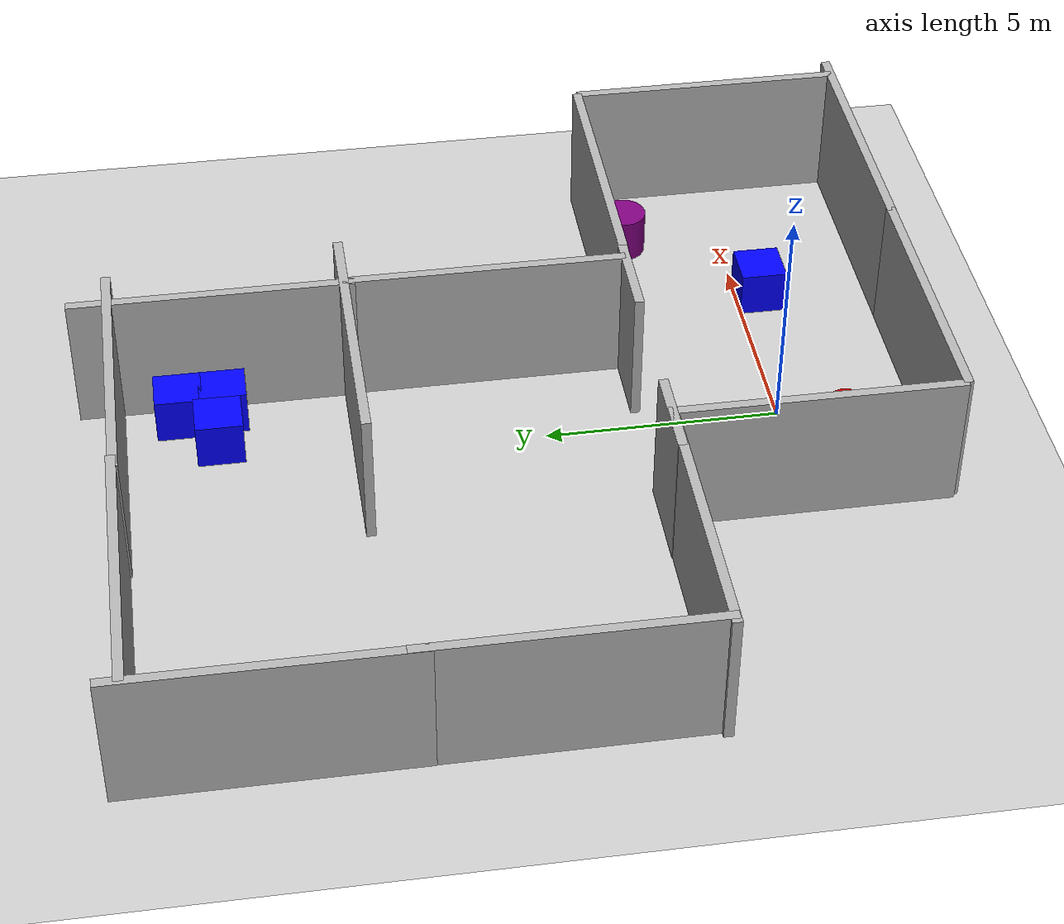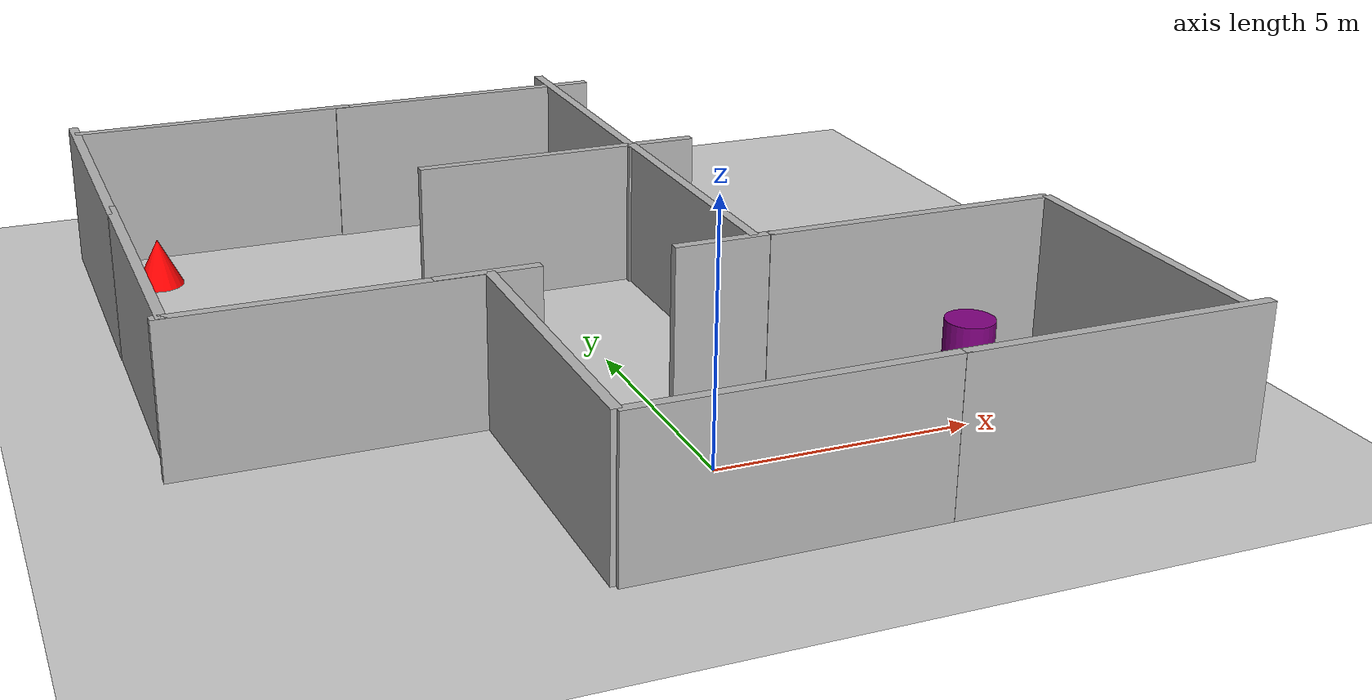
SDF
<sdf version='1.10'>
  <world name='empty'>
    <physics name='1ms' type='ignored'>
      <max_step_size>0.001</max_step_size>
      <real_time_factor>1</real_time_factor>
      <real_time_update_rate>1000</real_time_update_rate>
    </physics>
    <plugin name='gz::sim::systems::Physics' filename='gz-sim-physics-system'/>
    <plugin name='gz::sim::systems::UserCommands' filename='gz-sim-user-commands-system'/>
    <plugin name='gz::sim::systems::SceneBroadcaster' filename='gz-sim-scene-broadcaster-system'/>
    <plugin name='gz::sim::systems::Contact' filename='gz-sim-contact-system'/>
    <gravity>0 0 -9.8000000000000007</gravity>
    <magnetic_field>5.5644999999999998e-06 2.2875799999999999e-05 -4.2388400000000002e-05</magnetic_field>
    <atmosphere type='adiabatic'/>
    <scene>
      <ambient>0.400000006 0.400000006 0.400000006 1</ambient>
      <background>0.699999988 0.699999988 0.699999988 1</background>
      <shadows>true</shadows>
    </scene>
    <model name='ground_plane'>
      <static>true</static>
      <link name='link'>
        <collision name='collision'>
          <geometry>
            <plane>
              <normal>0 0 1</normal>
              <size>100 100</size>
            </plane>
          </geometry>
          <surface>
            <friction>
              <ode/>
            </friction>
            <bounce/>
            <contact/>
          </surface>
        </collision>
        <visual name='visual'>
          <geometry>
            <plane>
              <normal>0 0 1</normal>
              <size>100 100</size>
            </plane>
          </geometry>
          <material>
            <ambient>0.800000012 0.800000012 0.800000012 1</ambient>
            <diffuse>0.800000012 0.800000012 0.800000012 1</diffuse>
            <specular>0.800000012 0.800000012 0.800000012 1</specular>
          </material>
        </visual>
        <pose>0 0 0 0 0 0</pose>
        <inertial>
          <pose>0 0 0 0 0 0</pose>
          <mass>1</mass>
          <inertia>
            <ixx>1</ixx>
            <ixy>0</ixy>
            <ixz>0</ixz>
            <iyy>1</iyy>
            <iyz>0</iyz>
            <izz>1</izz>
          </inertia>
        </inertial>
        <enable_wind>false</enable_wind>
      </link>
      <pose>0 0 0 0 0 0</pose>
      <self_collide>false</self_collide>
    </model>
    <model name='box'>
      <pose>4.0339798927307129 -0.47071200609207153 0.5 1.0047999786145134e-21 -2.4640900634903831e-21 -3.9210799561843731e-22</pose>
      <link name='box_link'>
        <inertial>
          <inertia>
            <ixx>0.16666</ixx>
            <ixy>0</ixy>
            <ixz>0</ixz>
            <iyy>0.16666</iyy>
            <iyz>0</iyz>
            <izz>0.16666</izz>
          </inertia>
          <mass>1</mass>
          <pose>0 0 0 0 0 0</pose>
        </inertial>
        <collision name='box_collision'>
          <geometry>
            <box>
              <size>1 1 1</size>
            </box>
          </geometry>
          <surface>
            <friction>
              <ode/>
            </friction>
            <bounce/>
            <contact/>
          </surface>
        </collision>
        <visual name='box_visual'>
          <geometry>
            <box>
              <size>1 1 1</size>
            </box>
          </geometry>
          <material>
            <ambient>0 0 1 1</ambient>
            <diffuse>0 0 1 1</diffuse>
            <specular>1 1 1 1</specular>
          </material>
        </visual>
        <pose>0 0 0 0 0 0</pose>
        <enable_wind>false</enable_wind>
      </link>
      <static>false</static>
      <self_collide>false</self_collide>
    </model>
    <model name='sphere'>
      <pose>-0.70735299587249756 -1.2732700109481812 0.5 0 0 0</pose>
      <link name='sphere_link'>
        <inertial>
          <inertia>
            <ixx>0.10000000000000001</ixx>
            <ixy>0</ixy>
            <ixz>0</ixz>
            <iyy>0.10000000000000001</iyy>
            <iyz>0</iyz>
            <izz>0.10000000000000001</izz>
          </inertia>
          <mass>1</mass>
          <pose>0 0 0 0 0 0</pose>
        </inertial>
        <collision name='sphere_collision'>
          <geometry>
            <sphere>
              <radius>0.5</radius>
            </sphere>
          </geometry>
          <surface>
            <friction>
              <ode/>
            </friction>
            <bounce/>
            <contact/>
          </surface>
        </collision>
        <visual name='sphere_visual'>
          <geometry>
            <sphere>
              <radius>0.5</radius>
            </sphere>
          </geometry>
          <material>
            <ambient>1 0 0 1</ambient>
            <diffuse>1 0 0 1</diffuse>
            <specular>1 1 1 1</specular>
          </material>
        </visual>
        <pose>0 0 0 0 0 0</pose>
        <enable_wind>false</enable_wind>
      </link>
      <static>false</static>
      <self_collide>false</self_collide>
    </model>
    <model name='cylinder'>
      <pose>-7.2580199241638184 5.6290874481201172 0.49999898672103882 -1.7794600142924832e-19 6.2534399359671988e-19 -6.0281497998140797e-21</pose>
      <link name='cylinder_link'>
        <inertial>
          <inertia>
            <ixx>0.14580000000000001</ixx>
            <ixy>0</ixy>
            <ixz>0</ixz>
            <iyy>0.14580000000000001</iyy>
            <iyz>0</iyz>
            <izz>0.125</izz>
          </inertia>
          <mass>1</mass>
          <pose>0 0 0 0 0 0</pose>
        </inertial>
        <collision name='cylinder_collision'>
          <geometry>
            <cylinder>
              <radius>0.5</radius>
              <length>1</length>
            </cylinder>
          </geometry>
          <surface>
            <friction>
              <ode/>
            </friction>
            <bounce/>
            <contact/>
          </surface>
        </collision>
        <visual name='cylinder_visual'>
          <geometry>
            <cylinder>
              <radius>0.5</radius>
              <length>1</length>
            </cylinder>
          </geometry>
          <material>
            <ambient>0 1 0 1</ambient>
            <diffuse>0 1 0 1</diffuse>
            <specular>1 1 1 1</specular>
          </material>
        </visual>
        <pose>0 0 0 0 0 0</pose>
        <enable_wind>false</enable_wind>
      </link>
      <static>false</static>
      <self_collide>false</self_collide>
    </model>
    <model name='cylinder_0'>
      <pose>6.3694213085697573 2.2102483620514861 0.49999942638036005 3.0857583778038498e-19 3.7139836222223398e-19 -6.141993237134564e-21</pose>
      <link name='cylinder_link'>
        <inertial>
          <inertia>
            <ixx>0.14580000000000001</ixx>
            <ixy>0</ixy>
            <ixz>0</ixz>
            <iyy>0.14580000000000001</iyy>
            <iyz>0</iyz>
            <izz>0.125</izz>
          </inertia>
          <mass>1</mass>
          <pose>0 0 0 0 0 0</pose>
        </inertial>
        <collision name='cylinder_collision'>
          <geometry>
            <cylinder>
              <radius>0.5</radius>
              <length>1</length>
            </cylinder>
          </geometry>
          <surface>
            <friction>
              <ode/>
            </friction>
            <bounce/>
            <contact/>
          </surface>
        </collision>
        <visual name='cylinder_visual'>
          <geometry>
            <cylinder>
              <radius>0.5</radius>
              <length>1</length>
            </cylinder>
          </geometry>
          <material>
            <ambient>0.5 0 0.5 1</ambient>
            <diffuse>0.5 0 0.5 1</diffuse>
            <specular>1 1 1 1</specular>
          </material>
        </visual>
        <pose>0 0 0 0 0 0</pose>
        <enable_wind>false</enable_wind>
      </link>
      <static>false</static>
      <self_collide>false</self_collide>
    </model>
    <model name='room1_west_wall'>
      <static>true</static>
      <link name='wall_link'>
        <collision name='wall_collision'>
          <geometry>
            <box>
              <size>0.20000000000000001 6 3</size>
            </box>
          </geometry>
          <surface>
            <friction>
              <ode/>
            </friction>
            <bounce/>
            <contact/>
          </surface>
        </collision>
        <visual name='wall_visual'>
          <geometry>
            <box>
              <size>0.20000000000000001 6 3</size>
            </box>
          </geometry>
          <material>
            <ambient>0.5 0.5 0.5 1</ambient>
            <diffuse>0.699999988 0.699999988 0.699999988 1</diffuse>
            <specular>1 1 1 1</specular>
          </material>
        </visual>
        <pose>0 0 0 0 0 0</pose>
        <inertial>
          <pose>0 0 0 0 0 0</pose>
          <mass>10</mass>
          <inertia>
            <ixx>1</ixx>
            <ixy>0</ixy>
            <ixz>0</ixz>
            <iyy>1</iyy>
            <iyz>0</iyz>
            <izz>1</izz>
          </inertia>
        </inertial>
        <enable_wind>false</enable_wind>
      </link>
      <pose>-3 0 1.5 0 0 0</pose>
      <self_collide>false</self_collide>
    </model>
    <model name='room1_south_wall'>
      <static>true</static>
      <link name='wall_link'>
        <collision name='wall_collision'>
          <geometry>
            <box>
              <size>6 0.20000000000000001 3</size>
            </box>
          </geometry>
          <surface>
            <friction>
              <ode/>
            </friction>
            <bounce/>
            <contact/>
          </surface>
        </collision>
        <visual name='wall_visual'>
          <geometry>
            <box>
              <size>6 0.20000000000000001 3</size>
            </box>
          </geometry>
          <material>
            <ambient>0.5 0.5 0.5 1</ambient>
            <diffuse>0.699999988 0.699999988 0.699999988 1</diffuse>
            <specular>1 1 1 1</specular>
          </material>
        </visual>
        <pose>0 0 0 0 0 0</pose>
        <inertial>
          <pose>0 0 0 0 0 0</pose>
          <mass>10</mass>
          <inertia>
            <ixx>1</ixx>
            <ixy>0</ixy>
            <ixz>0</ixz>
            <iyy>1</iyy>
            <iyz>0</iyz>
            <izz>1</izz>
          </inertia>
        </inertial>
        <enable_wind>false</enable_wind>
      </link>
      <pose>0 -3 1.5 0 0 0</pose>
      <self_collide>false</self_collide>
    </model>
    <model name='room1_north_wall_left'>
      <static>true</static>
      <link name='wall_link'>
        <collision name='wall_collision'>
          <geometry>
            <box>
              <size>2 0.20000000000000001 3</size>
            </box>
          </geometry>
          <surface>
            <friction>
              <ode/>
            </friction>
            <bounce/>
            <contact/>
          </surface>
        </collision>
        <visual name='wall_visual'>
          <geometry>
            <box>
              <size>2 0.20000000000000001 3</size>
            </box>
          </geometry>
          <material>
            <ambient>0.5 0.5 0.5 1</ambient>
            <diffuse>0.699999988 0.699999988 0.699999988 1</diffuse>
            <specular>1 1 1 1</specular>
          </material>
        </visual>
        <pose>0 0 0 0 0 0</pose>
        <inertial>
          <pose>0 0 0 0 0 0</pose>
          <mass>10</mass>
          <inertia>
            <ixx>1</ixx>
            <ixy>0</ixy>
            <ixz>0</ixz>
            <iyy>1</iyy>
            <iyz>0</iyz>
            <izz>1</izz>
          </inertia>
        </inertial>
        <enable_wind>false</enable_wind>
      </link>
      <pose>-3.032249927520752 3 1.5 0 0 0</pose>
      <self_collide>false</self_collide>
    </model>
    <model name='room1_north_wall_right'>
      <static>true</static>
      <link name='wall_link'>
        <collision name='wall_collision'>
          <geometry>
            <box>
              <size>2 0.20000000000000001 3</size>
            </box>
          </geometry>
          <surface>
            <friction>
              <ode/>
            </friction>
            <bounce/>
            <contact/>
          </surface>
        </collision>
        <visual name='wall_visual'>
          <geometry>
            <box>
              <size>2 0.20000000000000001 3</size>
            </box>
          </geometry>
          <material>
            <ambient>0.5 0.5 0.5 1</ambient>
            <diffuse>0.699999988 0.699999988 0.699999988 1</diffuse>
            <specular>1 1 1 1</specular>
          </material>
        </visual>
        <pose>0 0 0 0 0 0</pose>
        <inertial>
          <pose>0 0 0 0 0 0</pose>
          <mass>10</mass>
          <inertia>
            <ixx>1</ixx>
            <ixy>0</ixy>
            <ixz>0</ixz>
            <iyy>1</iyy>
            <iyz>0</iyz>
            <izz>1</izz>
          </inertia>
        </inertial>
        <enable_wind>false</enable_wind>
      </link>
      <pose>1.5 3 1.5 0 0 0</pose>
      <self_collide>false</self_collide>
    </model>
    <model name='room1_south_wall_1'>
      <static>true</static>
      <link name='wall_link'>
        <collision name='wall_collision'>
          <geometry>
            <box>
              <size>6 0.20000000000000001 3</size>
            </box>
          </geometry>
          <surface>
            <friction>
              <ode/>
            </friction>
            <bounce/>
            <contact/>
          </surface>
        </collision>
        <visual name='wall_visual'>
          <geometry>
            <box>
              <size>6 0.20000000000000001 3</size>
            </box>
          </geometry>
          <material>
            <ambient>0.5 0.5 0.5 1</ambient>
            <diffuse>0.699999988 0.699999988 0.699999988 1</diffuse>
            <specular>1 1 1 1</specular>
          </material>
        </visual>
        <pose>0 0 0 0 0 0</pose>
        <inertial>
          <pose>0 0 0 0 0 0</pose>
          <mass>10</mass>
          <inertia>
            <ixx>1</ixx>
            <ixy>0</ixy>
            <ixz>0</ixz>
            <iyy>1</iyy>
            <iyz>0</iyz>
            <izz>1</izz>
          </inertia>
        </inertial>
        <enable_wind>false</enable_wind>
      </link>
      <pose>5.8957955256528241 -3.0041600792171779 1.5 0 0 0</pose>
      <self_collide>false</self_collide>
    </model>
    <model name='room1_west_wall_1'>
      <static>true</static>
      <link name='wall_link'>
        <collision name='wall_collision'>
          <geometry>
            <box>
              <size>0.20000000000000001 6 3</size>
            </box>
          </geometry>
          <surface>
            <friction>
              <ode/>
            </friction>
            <bounce/>
            <contact/>
          </surface>
        </collision>
        <visual name='wall_visual'>
          <geometry>
            <box>
              <size>0.20000000000000001 6 3</size>
            </box>
          </geometry>
          <material>
            <ambient>0.5 0.5 0.5 1</ambient>
            <diffuse>0.699999988 0.699999988 0.699999988 1</diffuse>
            <specular>1 1 1 1</specular>
          </material>
        </visual>
        <pose>0 0 0 0 0 0</pose>
        <inertial>
          <pose>0 0 0 0 0 0</pose>
          <mass>10</mass>
          <inertia>
            <ixx>1</ixx>
            <ixy>0</ixy>
            <ixz>0</ixz>
            <iyy>1</iyy>
            <iyz>0</iyz>
            <izz>1</izz>
          </inertia>
        </inertial>
        <enable_wind>false</enable_wind>
      </link>
      <pose>8.3822908434480823 -0.024907070862098202 1.5 0 0 0</pose>
      <self_collide>false</self_collide>
    </model>
    <model name='room1_south_wall_1_1'>
      <static>true</static>
      <link name='wall_link'>
        <collision name='wall_collision'>
          <geometry>
            <box>
              <size>6 0.20000000000000001 3</size>
            </box>
          </geometry>
          <surface>
            <friction>
              <ode/>
            </friction>
            <bounce/>
            <contact/>
          </surface>
        </collision>
        <visual name='wall_visual'>
          <geometry>
            <box>
              <size>6 0.20000000000000001 3</size>
            </box>
          </geometry>
          <material>
            <ambient>0.5 0.5 0.5 1</ambient>
            <diffuse>0.699999988 0.699999988 0.699999988 1</diffuse>
            <specular>1 1 1 1</specular>
          </material>
        </visual>
        <pose>0 0 0 0 0 0</pose>
        <inertial>
          <pose>0 0 0 0 0 0</pose>
          <mass>10</mass>
          <inertia>
            <ixx>1</ixx>
            <ixy>0</ixy>
            <ixz>0</ixz>
            <iyy>1</iyy>
            <iyz>0</iyz>
            <izz>1</izz>
          </inertia>
        </inertial>
        <enable_wind>false</enable_wind>
      </link>
      <pose>5.3981870249106585 2.986324652797911 1.5 0 0 0</pose>
      <self_collide>false</self_collide>
    </model>
    <model name='room1_south_wall_1_1_1'>
      <static>true</static>
      <link name='wall_link'>
        <collision name='wall_collision'>
          <geometry>
            <box>
              <size>6 0.20000000000000001 3</size>
            </box>
          </geometry>
          <surface>
            <friction>
              <ode/>
            </friction>
            <bounce/>
            <contact/>
          </surface>
        </collision>
        <visual name='wall_visual'>
          <geometry>
            <box>
              <size>6 0.20000000000000001 3</size>
            </box>
          </geometry>
          <material>
            <ambient>0.5 0.5 0.5 1</ambient>
            <diffuse>0.699999988 0.699999988 0.699999988 1</diffuse>
            <specular>1 1 1 1</specular>
          </material>
        </visual>
        <pose>0 0 0 0 0 0</pose>
        <inertial>
          <pose>0 0 0 0 0 0</pose>
          <mass>10</mass>
          <inertia>
            <ixx>1</ixx>
            <ixy>0</ixy>
            <ixz>0</ixz>
            <iyy>1</iyy>
            <iyz>0</iyz>
            <izz>1</izz>
          </inertia>
        </inertial>
        <enable_wind>false</enable_wind>
      </link>
      <pose>-5.8938198089599609 2.9850499629974365 1.5 0 0 0</pose>
      <self_collide>false</self_collide>
    </model>
    <model name='room1_west_wall_2'>
      <static>true</static>
      <link name='wall_link'>
        <collision name='wall_collision'>
          <geometry>
            <box>
              <size>0.20000000000000001 6 3</size>
            </box>
          </geometry>
          <surface>
            <friction>
              <ode/>
            </friction>
            <bounce/>
            <contact/>
          </surface>
        </collision>
        <visual name='wall_visual'>
          <geometry>
            <box>
              <size>0.20000000000000001 6 3</size>
            </box>
          </geometry>
          <material>
            <ambient>0.5 0.5 0.5 1</ambient>
            <diffuse>0.699999988 0.699999988 0.699999988 1</diffuse>
            <specular>1 1 1 1</specular>
          </material>
        </visual>
        <pose>0 0 0 0 0 0</pose>
        <inertial>
          <pose>0 0 0 0 0 0</pose>
          <mass>10</mass>
          <inertia>
            <ixx>1</ixx>
            <ixy>0</ixy>
            <ixz>0</ixz>
            <iyy>1</iyy>
            <iyz>0</iyz>
            <izz>1</izz>
          </inertia>
        </inertial>
        <enable_wind>false</enable_wind>
      </link>
      <pose>-8.6940197659931151 5.8971262683287646 1.5 0 0 0</pose>
      <self_collide>false</self_collide>
    </model>
    <model name='room1_west_wall_3'>
      <static>true</static>
      <link name='wall_link'>
        <collision name='wall_collision'>
          <geometry>
            <box>
              <size>0.20000000000000001 6 3</size>
            </box>
          </geometry>
          <surface>
            <friction>
              <ode/>
            </friction>
            <bounce/>
            <contact/>
          </surface>
        </collision>
        <visual name='wall_visual'>
          <geometry>
            <box>
              <size>0.20000000000000001 6 3</size>
            </box>
          </geometry>
          <material>
            <ambient>0.5 0.5 0.5 1</ambient>
            <diffuse>0.699999988 0.699999988 0.699999988 1</diffuse>
            <specular>1 1 1 1</specular>
          </material>
        </visual>
        <pose>0 0 0 0 0 0</pose>
        <inertial>
          <pose>0 0 0 0 0 0</pose>
          <mass>10</mass>
          <inertia>
            <ixx>1</ixx>
            <ixy>0</ixy>
            <ixz>0</ixz>
            <iyy>1</iyy>
            <iyz>0</iyz>
            <izz>1</izz>
          </inertia>
        </inertial>
        <enable_wind>false</enable_wind>
      </link>
      <pose>-8.7047430409375934 11.423654172731405 1.5 0 0 0</pose>
      <self_collide>false</self_collide>
    </model>
    <model name='room1_west_wall_4'>
      <static>true</static>
      <link name='wall_link'>
        <collision name='wall_collision'>
          <geometry>
            <box>
              <size>0.20000000000000001 6 3</size>
            </box>
          </geometry>
          <surface>
            <friction>
              <ode/>
            </friction>
            <bounce/>
            <contact/>
          </surface>
        </collision>
        <visual name='wall_visual'>
          <geometry>
            <box>
              <size>0.20000000000000001 6 3</size>
            </box>
          </geometry>
          <material>
            <ambient>0.5 0.5 0.5 1</ambient>
            <diffuse>0.699999988 0.699999988 0.699999988 1</diffuse>
            <specular>1 1 1 1</specular>
          </material>
        </visual>
        <pose>0 0 0 0 0 0</pose>
        <inertial>
          <pose>0 0 0 0 0 0</pose>
          <mass>10</mass>
          <inertia>
            <ixx>1</ixx>
            <ixy>0</ixy>
            <ixz>0</ixz>
            <iyy>1</iyy>
            <iyz>0</iyz>
            <izz>1</izz>
          </inertia>
        </inertial>
        <enable_wind>false</enable_wind>
      </link>
      <pose>2.1231257980345966 6.0072735150759602 1.5 0 0 0</pose>
      <self_collide>false</self_collide>
    </model>
    <model name='room1_west_wall_5'>
      <static>true</static>
      <link name='wall_link'>
        <collision name='wall_collision'>
          <geometry>
            <box>
              <size>0.20000000000000001 6 3</size>
            </box>
          </geometry>
          <surface>
            <friction>
              <ode/>
            </friction>
            <bounce/>
            <contact/>
          </surface>
        </collision>
        <visual name='wall_visual'>
          <geometry>
            <box>
              <size>0.20000000000000001 6 3</size>
            </box>
          </geometry>
          <material>
            <ambient>0.5 0.5 0.5 1</ambient>
            <diffuse>0.699999988 0.699999988 0.699999988 1</diffuse>
            <specular>1 1 1 1</specular>
          </material>
        </visual>
        <pose>0 0 0 0 0 0</pose>
        <inertial>
          <pose>0 0 0 0 0 0</pose>
          <mass>10</mass>
          <inertia>
            <ixx>1</ixx>
            <ixy>0</ixy>
            <ixz>0</ixz>
            <iyy>1</iyy>
            <iyz>0</iyz>
            <izz>1</izz>
          </inertia>
        </inertial>
        <enable_wind>false</enable_wind>
      </link>
      <pose>2.0837921014365453 11.752846886602359 1.5 0 0 0</pose>
      <self_collide>false</self_collide>
    </model>
    <model name='room1_south_wall_2'>
      <static>true</static>
      <link name='wall_link'>
        <collision name='wall_collision'>
          <geometry>
            <box>
              <size>6 0.20000000000000001 3</size>
            </box>
          </geometry>
          <surface>
            <friction>
              <ode/>
            </friction>
            <bounce/>
            <contact/>
          </surface>
        </collision>
        <visual name='wall_visual'>
          <geometry>
            <box>
              <size>6 0.20000000000000001 3</size>
            </box>
          </geometry>
          <material>
            <ambient>0.5 0.5 0.5 1</ambient>
            <diffuse>0.699999988 0.699999988 0.699999988 1</diffuse>
            <specular>1 1 1 1</specular>
          </material>
        </visual>
        <pose>0 0 0 0 0 0</pose>
        <inertial>
          <pose>0 0 0 0 0 0</pose>
          <mass>10</mass>
          <inertia>
            <ixx>1</ixx>
            <ixy>0</ixy>
            <ixz>0</ixz>
            <iyy>1</iyy>
            <iyz>0</iyz>
            <izz>1</izz>
          </inertia>
        </inertial>
        <enable_wind>false</enable_wind>
      </link>
      <pose>-5.7245707678970925 13.94199346210201 1.5 0 0 0</pose>
      <self_collide>false</self_collide>
    </model>
    <model name='room1_south_wall_3'>
      <static>true</static>
      <link name='wall_link'>
        <collision name='wall_collision'>
          <geometry>
            <box>
              <size>6 0.20000000000000001 3</size>
            </box>
          </geometry>
          <surface>
            <friction>
              <ode/>
            </friction>
            <bounce/>
            <contact/>
          </surface>
        </collision>
        <visual name='wall_visual'>
          <geometry>
            <box>
              <size>6 0.20000000000000001 3</size>
            </box>
          </geometry>
          <material>
            <ambient>0.5 0.5 0.5 1</ambient>
            <diffuse>0.699999988 0.699999988 0.699999988 1</diffuse>
            <specular>1 1 1 1</specular>
          </material>
        </visual>
        <pose>0 0 0 0 0 0</pose>
        <inertial>
          <pose>0 0 0 0 0 0</pose>
          <mass>10</mass>
          <inertia>
            <ixx>1</ixx>
            <ixy>0</ixy>
            <ixz>0</ixz>
            <iyy>1</iyy>
            <iyz>0</iyz>
            <izz>1</izz>
          </inertia>
        </inertial>
        <enable_wind>false</enable_wind>
      </link>
      <pose>-0.044560572722400105 13.907753796189084 1.5 0 0 0</pose>
      <self_collide>false</self_collide>
    </model>
    <model name='cone'>
      <pose>-7.4271367142929945 12.238228638636508 0.5 0 0 0</pose>
      <link name='cone_link'>
        <inertial>
          <inertia>
            <ixx>0.074999999999999997</ixx>
            <ixy>0</ixy>
            <ixz>0</ixz>
            <iyy>0.074999999999999997</iyy>
            <iyz>0</iyz>
            <izz>0.074999999999999997</izz>
          </inertia>
          <mass>1</mass>
          <pose>0 0 0 0 0 0</pose>
        </inertial>
        <collision name='cone_collision'>
          <geometry>
            <cone>
              <radius>0.5</radius>
              <length>1</length>
            </cone>
          </geometry>
          <surface>
            <friction>
              <ode/>
            </friction>
            <bounce/>
            <contact/>
          </surface>
        </collision>
        <visual name='cone_visual'>
          <geometry>
            <cone>
              <radius>0.5</radius>
              <length>1</length>
            </cone>
          </geometry>
          <material>
            <ambient>1 0 0 1</ambient>
            <diffuse>1 0 0 1</diffuse>
            <specular>1 1 1 1</specular>
          </material>
        </visual>
        <pose>0 0 0 0 0 0</pose>
        <enable_wind>false</enable_wind>
      </link>
      <static>false</static>
      <self_collide>false</self_collide>
    </model>
    <model name='room1_south_wall_1_1_1_1'>
      <static>true</static>
      <link name='wall_link'>
        <collision name='wall_collision'>
          <geometry>
            <box>
              <size>6 0.20000000000000001 3</size>
            </box>
          </geometry>
          <surface>
            <friction>
              <ode/>
            </friction>
            <bounce/>
            <contact/>
          </surface>
        </collision>
        <visual name='wall_visual'>
          <geometry>
            <box>
              <size>6 0.20000000000000001 3</size>
            </box>
          </geometry>
          <material>
            <ambient>0.5 0.5 0.5 1</ambient>
            <diffuse>0.699999988 0.699999988 0.699999988 1</diffuse>
            <specular>1 1 1 1</specular>
          </material>
        </visual>
        <pose>0 0 0 0 0 0</pose>
        <inertial>
          <pose>0 0 0 0 0 0</pose>
          <mass>10</mass>
          <inertia>
            <ixx>1</ixx>
            <ixy>0</ixy>
            <ixz>0</ixz>
            <iyy>1</iyy>
            <iyz>0</iyz>
            <izz>1</izz>
          </inertia>
        </inertial>
        <enable_wind>false</enable_wind>
      </link>
      <pose>0.47669720676063321 8.9865582551746943 1.5 0 0 0</pose>
      <self_collide>false</self_collide>
    </model>
    <model name='box_1'>
      <pose>0.60967039407487267 11.84318323813612 0.5 1.0047999786145134e-21 -2.4640900634903831e-21 -3.9210799561843731e-22</pose>
      <link name='box_link'>
        <inertial>
          <inertia>
            <ixx>0.16666</ixx>
            <ixy>0</ixy>
            <ixz>0</ixz>
            <iyy>0.16666</iyy>
            <iyz>0</iyz>
            <izz>0.16666</izz>
          </inertia>
          <mass>1</mass>
          <pose>0 0 0 0 0 0</pose>
        </inertial>
        <collision name='box_collision'>
          <geometry>
            <box>
              <size>1 1 1</size>
            </box>
          </geometry>
          <surface>
            <friction>
              <ode/>
            </friction>
            <bounce/>
            <contact/>
          </surface>
        </collision>
        <visual name='box_visual'>
          <geometry>
            <box>
              <size>1 1 1</size>
            </box>
          </geometry>
          <material>
            <ambient>0 0 1 1</ambient>
            <diffuse>0 0 1 1</diffuse>
            <specular>1 1 1 1</specular>
          </material>
        </visual>
        <pose>0 0 0 0 0 0</pose>
        <enable_wind>false</enable_wind>
      </link>
      <static>false</static>
      <self_collide>false</self_collide>
    </model>
    <model name='box_1_1'>
      <pose>1.5466574764611485 12.644973935144792 0.5 1.0047999786145134e-21 -2.4640900634903831e-21 -3.9210799561843731e-22</pose>
      <link name='box_link'>
        <inertial>
          <inertia>
            <ixx>0.16666</ixx>
            <ixy>0</ixy>
            <ixz>0</ixz>
            <iyy>0.16666</iyy>
            <iyz>0</iyz>
            <izz>0.16666</izz>
          </inertia>
          <mass>1</mass>
          <pose>0 0 0 0 0 0</pose>
        </inertial>
        <collision name='box_collision'>
          <geometry>
            <box>
              <size>1 1 1</size>
            </box>
          </geometry>
          <surface>
            <friction>
              <ode/>
            </friction>
            <bounce/>
            <contact/>
          </surface>
        </collision>
        <visual name='box_visual'>
          <geometry>
            <box>
              <size>1 1 1</size>
            </box>
          </geometry>
          <material>
            <ambient>0 0 1 1</ambient>
            <diffuse>0 0 1 1</diffuse>
            <specular>1 1 1 1</specular>
          </material>
        </visual>
        <pose>0 0 0 0 0 0</pose>
        <enable_wind>false</enable_wind>
      </link>
      <static>false</static>
      <self_collide>false</self_collide>
    </model>
    <model name='box_1_2'>
      <pose>1.6029461597435257 11.707544075740152 0.5 1.0047999786145134e-21 -2.4640900634903831e-21 -3.9210799561843731e-22</pose>
      <link name='box_link'>
        <inertial>
          <inertia>
            <ixx>0.16666</ixx>
            <ixy>0</ixy>
            <ixz>0</ixz>
            <iyy>0.16666</iyy>
            <iyz>0</iyz>
            <izz>0.16666</izz>
          </inertia>
          <mass>1</mass>
          <pose>0 0 0 0 0 0</pose>
        </inertial>
        <collision name='box_collision'>
          <geometry>
            <box>
              <size>1 1 1</size>
            </box>
          </geometry>
          <surface>
            <friction>
              <ode/>
            </friction>
            <bounce/>
            <contact/>
          </surface>
        </collision>
        <visual name='box_visual'>
          <geometry>
            <box>
              <size>1 1 1</size>
            </box>
          </geometry>
          <material>
            <ambient>0 0 1 1</ambient>
            <diffuse>0 0 1 1</diffuse>
            <specular>1 1 1 1</specular>
          </material>
        </visual>
        <pose>0 0 0 0 0 0</pose>
        <enable_wind>false</enable_wind>
      </link>
      <static>false</static>
      <self_collide>false</self_collide>
    </model>
    <light name='sun' type='directional'>
      <pose>0 0 10 0 0 0</pose>
      <cast_shadows>true</cast_shadows>
      <intensity>1</intensity>
      <direction>-0.5 0.10000000000000001 -0.90000000000000002</direction>
      <diffuse>0.800000012 0.800000012 0.800000012 1</diffuse>
      <specular>0.200000003 0.200000003 0.200000003 1</specular>
      <attenuation>
        <range>1000</range>
        <linear>0.0099999997764825821</linear>
        <constant>0.89999997615814209</constant>
        <quadratic>0.0010000000474974513</quadratic>
      </attenuation>
      <spot>
        <inner_angle>0</inner_angle>
        <outer_angle>0</outer_angle>
        <falloff>0</falloff>
      </spot>
    </light>
  </world>
</sdf>
